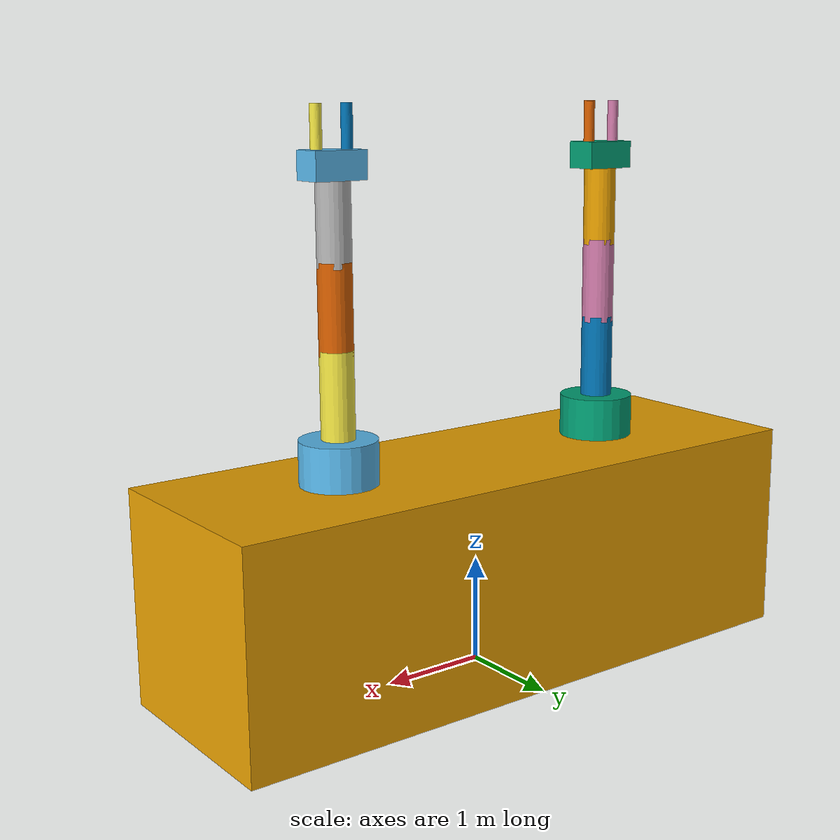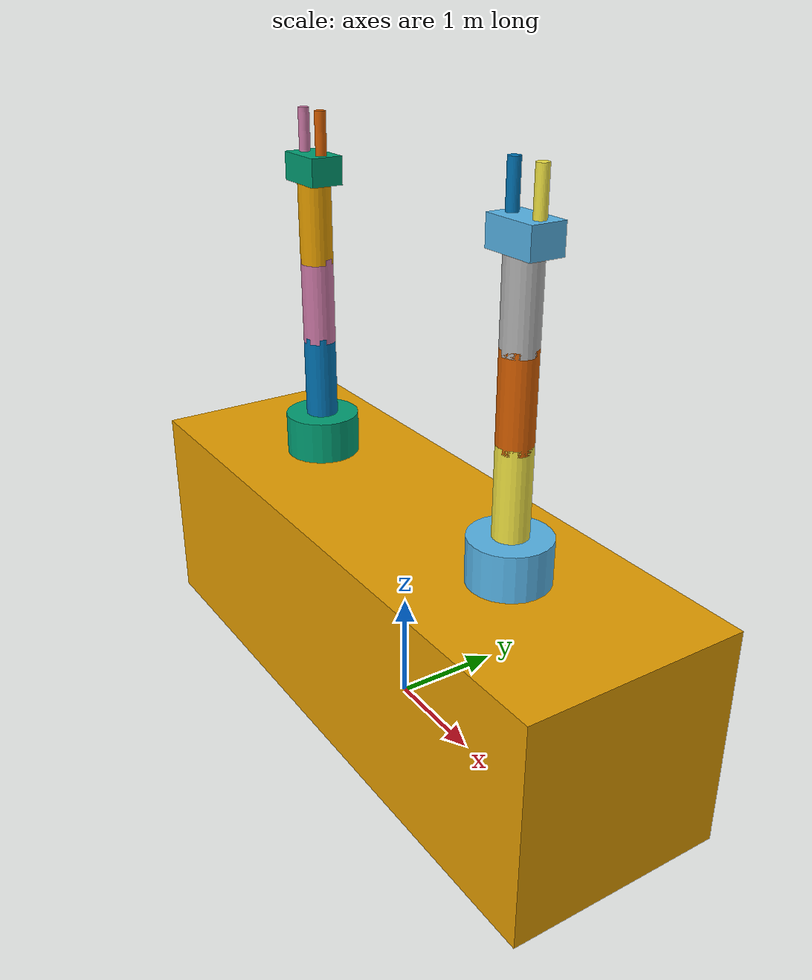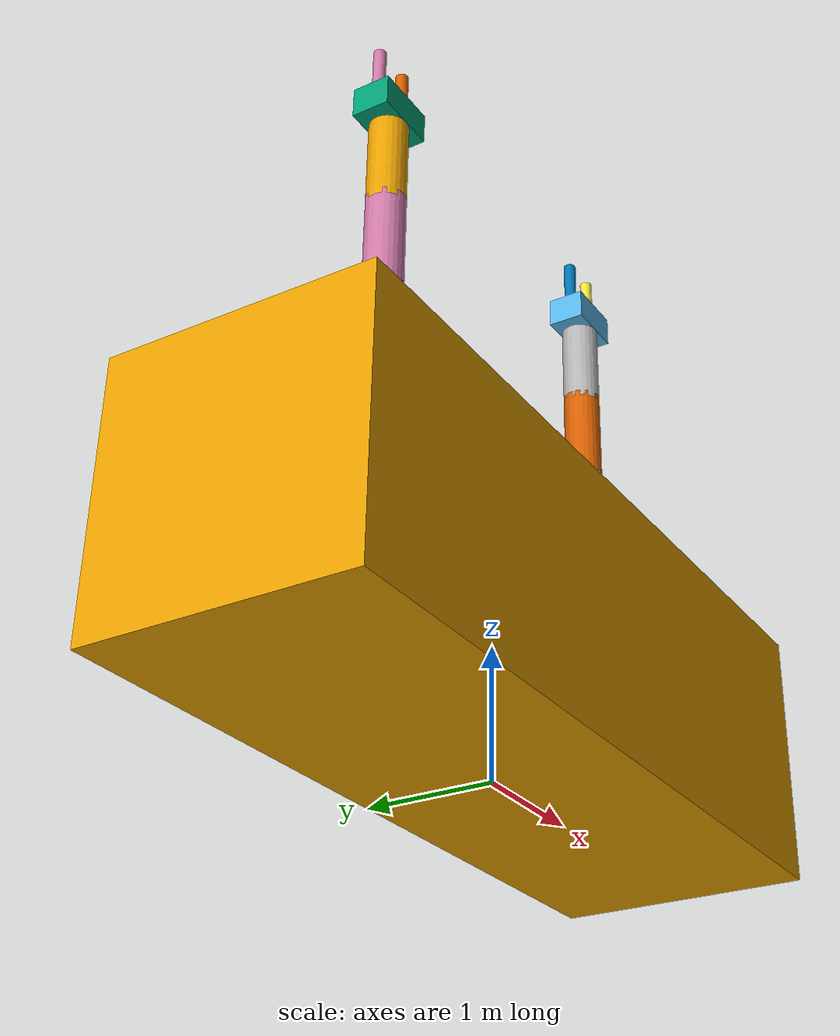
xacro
<?xml version="1.0" ?>

<robot name="mrm" xmlns:xacro="http://www.ros.org/wiki/xacro">

  <!-- BGN - Include -->
  <xacro:include filename="$(find mrm_description)/urdf/links_joints.xacro" />
  <!-- END - Include -->

<!-- BGN - Robot description -->

    <m_link_box name="base_link"
            origin_rpy="0 0 0" origin_xyz="0 0 1"
            mass="1024"
            ixx="3840" ixy="0" ixz="0"
            iyy="3840" iyz="0"
            izz="3840"
            size="6 2 2" />

    <m_joint name="base_link__link_01" type="revolute"
           axis_xyz="0 0 1"
           origin_rpy="0 0 0" origin_xyz="1.5 0 2"
           parent="base_link" child="link_01"
           limit_e="1000" limit_l="-3.14" limit_u="0" limit_v="0.5"  />

    <m_link_cylinder name="link_01"
              origin_rpy="0 0 0" origin_xyz="0 0 0.2"
              mass="157.633"
              ixx="13.235" ixy="0" ixz="0"
              iyy="13.235" iyz="0"
              izz="9.655"
              length="0.4" radius="0.35" />

    <m_joint name="base_link__link_01_1" type="revolute"
           axis_xyz="0 0 1"
           origin_rpy="0 0 0" origin_xyz="-1.5 0 2"
           parent="base_link" child="link_01_1"
           limit_e="1000" limit_l="0" limit_u="3.14" limit_v="0.5" />

    <m_link_cylinder name="link_01_1"
              origin_rpy="0 0 0" origin_xyz="0 0 0.2"
              mass="157.633"
             ixx="13.235" ixy="0" ixz="0"
              iyy="13.235" iyz="0"
             izz="9.655"
              length="0.4" radius="0.35" />

     <m_joint name="link_01__link_02" type="revolute"
           axis_xyz="1 0 0"
           origin_rpy="0 0 0" origin_xyz="0 0 0.375"
           parent="link_01" child="link_02"
           limit_e="1000" limit_l="0" limit_u="0" limit_v="0.5"/>

    <m_link_cylinder name="link_02"
              origin_rpy="0 0 0" origin_xyz="0 0 0.4"
              mass="57.906"
              ixx="6.828" ixy="0" ixz="0"
             iyy="6.828" iyz="0"
             izz="0.651"
              length="0.8" radius="0.15" />

    <m_joint name="link_01_1__link_02_2" type="revolute"
           axis_xyz="1 0 0"
           origin_rpy="0 0 0" origin_xyz="0 0 0.375"
           parent="link_01_1" child="link_02_2"
           limit_e="1000" limit_l="0" limit_u="0" limit_v="0.5" />

     <m_link_cylinder name="link_02_2"
              origin_rpy="0 0 0" origin_xyz="0 0 0.4"
              mass="57.906"
                ixx="6.828" ixy="0" ixz="0"
             iyy="6.828" iyz="0"
             izz="0.651"
              length="0.8" radius="0.15" />

    <m_joint name="link_02__link_03" type="revolute"
           axis_xyz="1 0 0"
           origin_rpy="0 0 0" origin_xyz="0 0 0.75"
           parent="link_02" child="link_03"
           limit_e="1000" limit_l="-1.57" limit_u="0" limit_v="0.5"  />

    <m_link_cylinder name="link_03"
              origin_rpy="0 0 0" origin_xyz="0 0 0.4"
              mass="57.906"
             ixx="6.828" ixy="0" ixz="0"
             iyy="6.828" iyz="0"
             izz="0.651"
              length="0.8" radius="0.15" />

      <m_joint name="link_02_2__link_03_3" type="revolute"
           axis_xyz="1 0 0"
           origin_rpy="0 0 0" origin_xyz="0 0 0.75"
           parent="link_02_2" child="link_03_3"
           limit_e="1000" limit_l="-1.57" limit_u="0" limit_v="0.5" />

    <m_link_cylinder name="link_03_3"
             origin_rpy="0 0 0" origin_xyz="0 0 0.4"
             mass="57.906"
             ixx="6.828" ixy="0" ixz="0"
             iyy="6.828" iyz="0"
             izz="0.651"
             length="0.8" radius="0.15" />

    <m_joint name="link_03__link_04" type="revolute"
           axis_xyz="1 0 0"
           origin_rpy="0 0 0" origin_xyz="0 0 0.75"
           parent="link_03" child="link_04"
           limit_e="1000" limit_l="-0.785" limit_u="0.785" limit_v="0.5" />

    <m_link_cylinder name="link_04"
            origin_rpy="0 0 0" origin_xyz="0 0 0.4"
            mass="37.906"
         ixx="6.828" ixy="0" ixz="0"
         iyy="6.828" iyz="0"
         izz="0.651"
            length="0.8" radius="0.15" />

    <m_joint name="link_03_3__link_04_4" type="revolute"
           axis_xyz="1 0 0"
           origin_rpy="0 0 0" origin_xyz="0 0 0.75"
           parent="link_03_3" child="link_04_4"
          limit_e="1000" limit_l="-0.785" limit_u="0.785" limit_v="0.5"/>

     <m_link_cylinder name="link_04_4"
            origin_rpy="0 0 0" origin_xyz="0 0 0.4"
            mass="37.906"
          ixx="6.828" ixy="0" ixz="0"
         iyy="6.828" iyz="0"
         izz="0.651"
            length="0.8" radius="0.15" />

    <m_joint name="link_04__link_05" type="revolute"
           axis_xyz="0 0 1"
           origin_rpy="0 0 0" origin_xyz="0 0 0.85"
           parent="link_04" child="link_05"
            limit_e="1000" limit_l="-3.14" limit_u="3.14" limit_v="0.5"/>

    <m_link_box name="link_05"
              origin_rpy="0 0 0" origin_xyz="0 0 0"
              mass="10"
               ixx="0.3542" ixy="0" ixz="0"
              iyy="0.3542" iyz="0"
              izz="0.3542"
              size="0.5 0.3 0.25" />

    <m_joint name="link_04_4__link_05_5" type="revolute"
           axis_xyz="0 0 1"
           origin_rpy="0 0 0" origin_xyz="0 0 0.85"
           parent="link_04_4" child="link_05_5"
           limit_e="1000" limit_l="-3.14" limit_u="3.14" limit_v="0.5"/>

    <m_link_box name="link_05_5"
              origin_rpy="0 0 0" origin_xyz="0 0 0"
              mass="10"
               ixx="0.3542" ixy="0" ixz="0"
              iyy="0.3542" iyz="0"
               izz="0.3542"
              size="0.5 0.3 0.25" />

     <m_joint name="link_05__link_06" type="revolute"
           axis_xyz="0 1 0"
           origin_rpy="0 0 0" origin_xyz="0.15 0 0"
           parent="link_05" child="link_06"
           limit_e="1000" limit_l="-0.12" limit_u="0.40" limit_v="0.5"/>

    <m_link_cylinder name="link_06"
            origin_rpy="0 0 0" origin_xyz="0 0 0.25"
            mass="5.056"
          ixx="0.1085" ixy="0" ixz="0"
         iyy="0.1085" iyz="0"
         izz="0.00632"
            length="0.5" radius="0.05" />

     <m_joint name="link_05__link_07" type="revolute"
           axis_xyz="0 1 0"
           origin_rpy="0 0 0" origin_xyz="-0.15 0 0"
           parent="link_05" child="link_07"
           limit_e="1000" limit_l="-0.40" limit_u="0.12" limit_v="0.5"/>

    <m_link_cylinder name="link_07"
            origin_rpy="0 0 0" origin_xyz="0 0 0.25"
            mass="5.056"
         ixx="0.1085" ixy="0" ixz="0"
          iyy="0.1085" iyz="0"
          izz="0.00632"
            length="0.5" radius="0.05" />

    <m_joint name="link_05_5__link_06_6" type="revolute"
           axis_xyz="0 1 0"
           origin_rpy="0 0 0" origin_xyz="0.15 0 0"
           parent="link_05_5" child="link_06_6"
           limit_e="1000" limit_l="-0.12" limit_u="0.40" limit_v="0.5"/>

    <m_link_cylinder name="link_06_6"
            origin_rpy="0 0 0" origin_xyz="0 0 0.25"
            mass="5.056"
           ixx="0.1085" ixy="0" ixz="0"
           iyy="0.1085" iyz="0"
           izz="0.00632"
          length="0.5" radius="0.05" />

     <m_joint name="link_05_5__link_07_7" type="revolute"
           axis_xyz="0 1 0"
           origin_rpy="0 0 0" origin_xyz="-0.15 0 0"
           parent="link_05_5" child="link_07_7"
           limit_e="1000" limit_l="-0.40" limit_u="0.12" limit_v="0.5"/>

    <m_link_cylinder name="link_07_7"
            origin_rpy="0 0 0" origin_xyz="0 0 0.25"
            mass="5.056"
           ixx="0.1085" ixy="0" ixz="0"
          iyy="0.1085" iyz="0"
          izz="0.00632"
            length="0.5" radius="0.05" />

<!-- END - Robot description -->

<gazebo>
    <plugin name="gazebo_ros_control" filename="libgazebo_ros_control.so">
    </plugin>
</gazebo>

</robot>

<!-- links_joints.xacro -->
<robot xmlns:xacro="http://www.ros.org/wiki/xacro">

  <xacro:macro name="m_joint" params="name type axis_xyz origin_rpy origin_xyz parent child limit_e limit_l limit_u limit_v">
    <joint name="${name}" type="${type}">
      <axis xyz="${axis_xyz}" />
      <limit effort="${limit_e}" lower="${limit_l}" upper="${limit_u}" velocity="${limit_v}" />
      <origin rpy="${origin_rpy}" xyz="${origin_xyz}" />
      <parent link="${parent}" />
      <child link="${child}" />
    </joint>
     <transmission name="trans_${name}">
    <type>transmission_interface/SimpleTransmission</type>
    <joint name="${name}">
        <hardwareInterface>hardware_interface/EffortJointInterface</hardwareInterface>
    </joint>
    <actuator name="motor_${name}">
        <hardwareInterface>hardware_interface/EffortJointInterface</hardwareInterface>
        <mechanicalReduction>1</mechanicalReduction>
    </actuator>
  </transmission>
  </xacro:macro>

  <xacro:macro name="m_link_cylinder" params="name origin_xyz origin_rpy radius length mass ixx ixy ixz iyy iyz izz">
    <link name="${name}">
     <inertial>
        <mass value="${mass}" />
        <origin rpy="${origin_rpy}" xyz="${origin_xyz}" />
        <inertia ixx="${ixx}" ixy="${ixy}" ixz="${ixz}" iyy="${iyy}" iyz="${iyz}" izz="${izz}" />
    </inertial>
     <collision>
        <origin rpy="${origin_rpy}" xyz="${origin_xyz}" />
        <geometry>
            <cylinder radius="${radius}" length="${length}" />
        </geometry>
    </collision>
    <visual>
      <origin rpy="${origin_rpy}" xyz="${origin_xyz}" />
      <geometry>
        <cylinder radius="${radius}" length="${length}" />
      </geometry>
    </visual>
    </link>
  </xacro:macro>

  <xacro:macro name="m_link_box" params="name origin_xyz origin_rpy size mass ixx ixy ixz iyy iyz izz">
    <link name="${name}">
        <inertial>
            <mass value="${mass}" />
            <origin rpy="${origin_rpy}" xyz="${origin_xyz}" />
            <inertia ixx="${ixx}" ixy="${ixy}" ixz="${ixz}" iyy="${iyy}" iyz="${iyz}" izz="${izz}" />
        </inertial>
        <collision>
            <origin rpy="${origin_rpy}" xyz="${origin_xyz}" />
            <geometry>
            <box size="${size}" />
            </geometry>
        </collision>
    <visual>
      <origin rpy="${origin_rpy}" xyz="${origin_xyz}" />
      <geometry>
        <box size="${size}" />
      </geometry>
    </visual>
    </link>
  </xacro:macro>

</robot>
